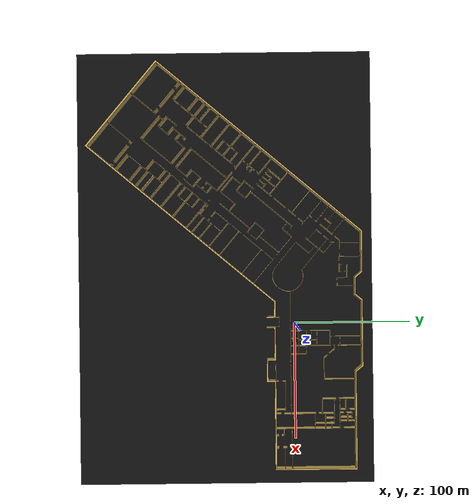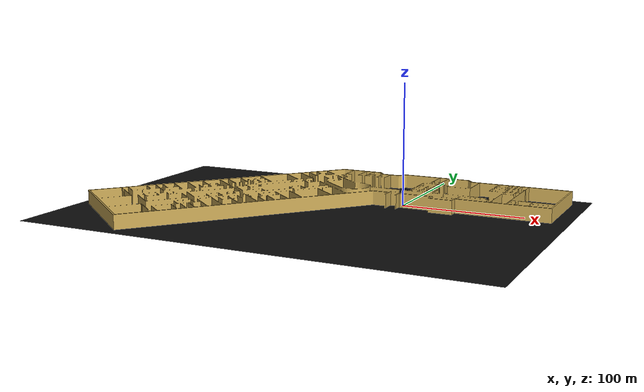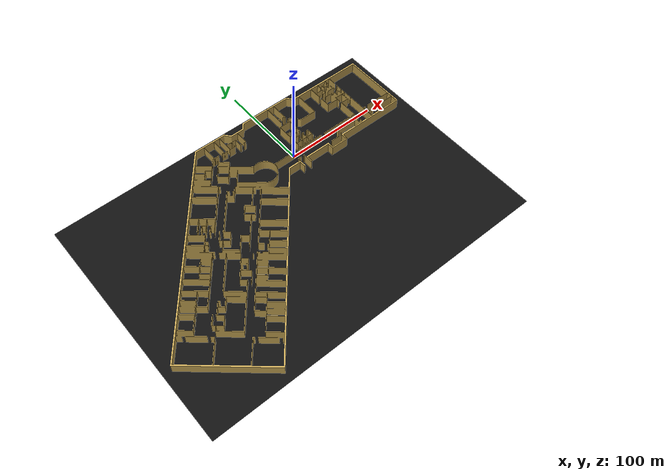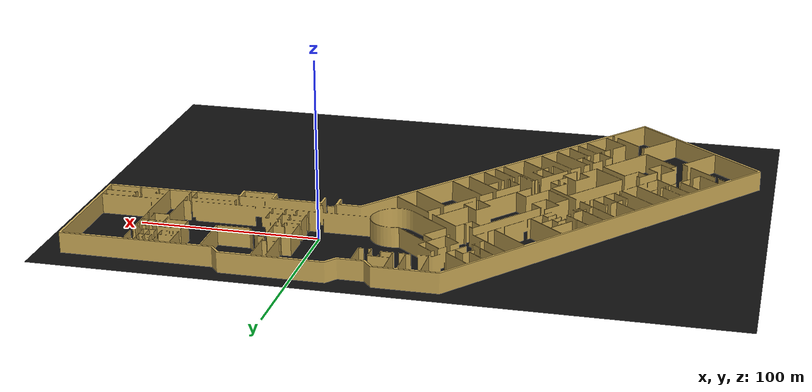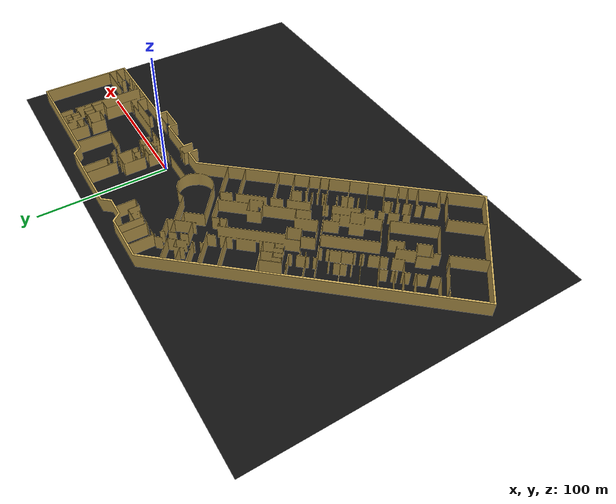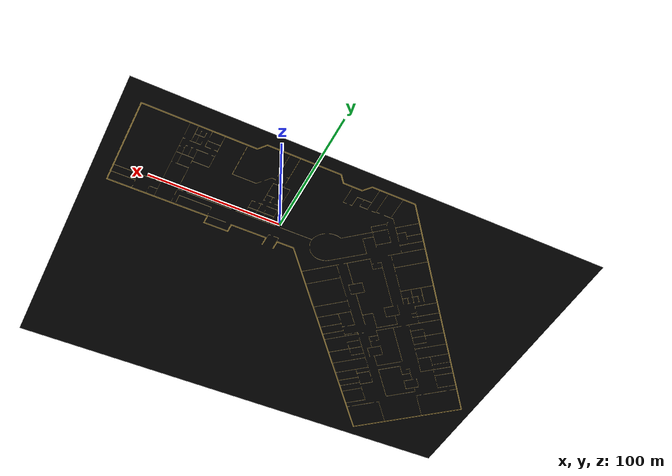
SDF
<?xml version="1.0"?>

<sdf version="1.9">

  <gravity>0 0 -9.8</gravity>
  <magnetic_field>6e-06 2.3e-05 -4.2e-05</magnetic_field>
  <atmosphere type='adiabatic' />
  <physics type='ode'>
    <max_step_size>0.001</max_step_size>
    <real_time_factor>1</real_time_factor>
    <real_time_update_rate>1000</real_time_update_rate>
  </physics>
  <plugin
    filename="gz-sim-physics-system"
    name="gz::sim::systems::Physics">
</plugin>

  <plugin
    filename="gz-sim-user-commands-system"
    name="gz::sim::systems::UserCommands">
  </plugin>
  <plugin
    filename="gz-sim-scene-broadcaster-system"
    name="gz::sim::systems::SceneBroadcaster">
  </plugin>

  <scene>
    <grid>false</grid>
    <ambient>0.4 0.4 0.4 1</ambient>
    <background>0.7 0.7 0.7 1</background>
    <shadows>true</shadows>
  </scene>

  <model name="mvp0">

    <link name="link">
    <pose>0 -4 0 0 0 0 </pose>
      <inertial>
        <mass>1</mass>
        <inertia>
          <ixx>0.2</ixx>
          <ixy>0.0</ixy>
          <ixz>0.0</ixz>
          <iyy>0.2</iyy>
          <iyz>0.0</iyz>
          <izz>0.3</izz>
        </inertia>
      </inertial>
      <collision name="collision">

        <geometry>
          <mesh>
          <scale>4 4 4</scale>

            <uri>model://inno_3rd_floor.dae</uri>
          </mesh>
        </geometry>
      </collision>
      <visual name="visual">

        <geometry>
          <mesh>
            <scale>4 4 4</scale>
            <uri>model://inno_3rd_floor.dae</uri>
          </mesh>
        </geometry>
      </visual>
    </link>
    <static>1</static>
  </model>

</sdf>
